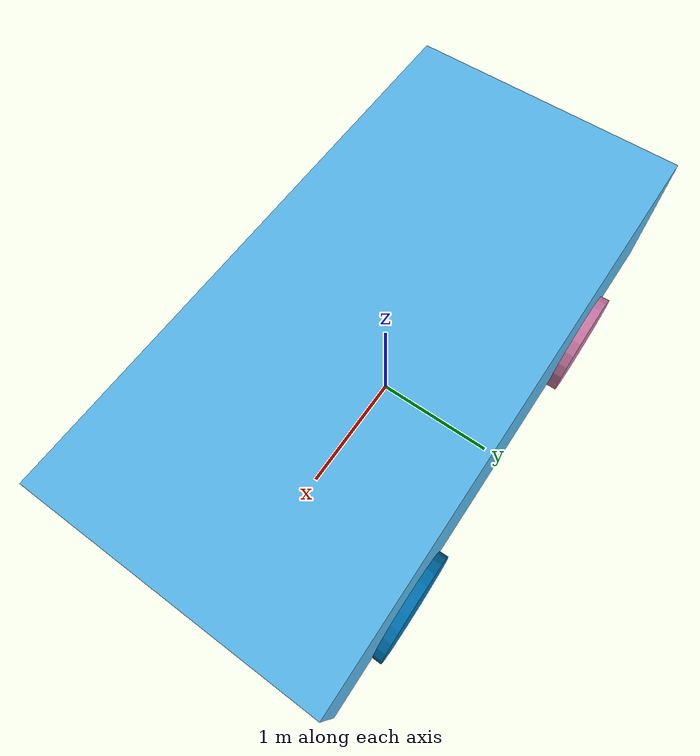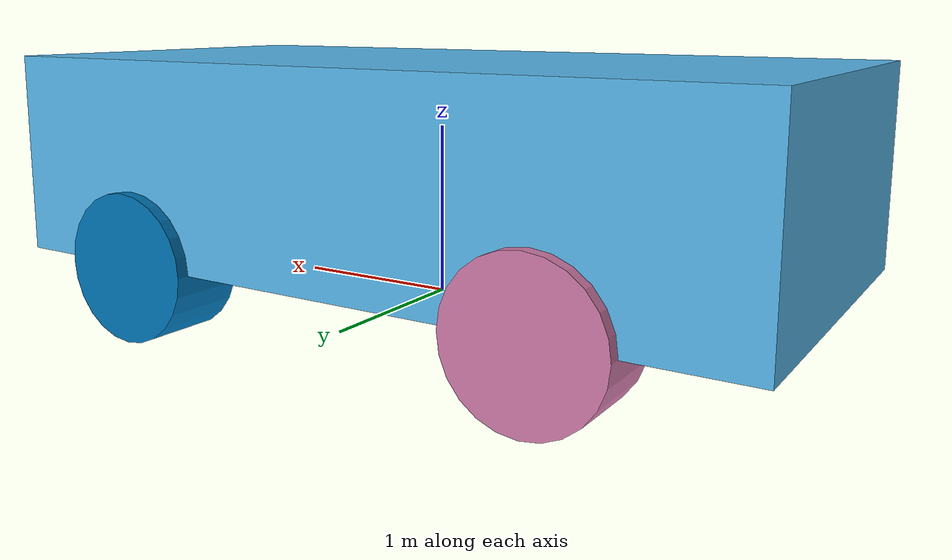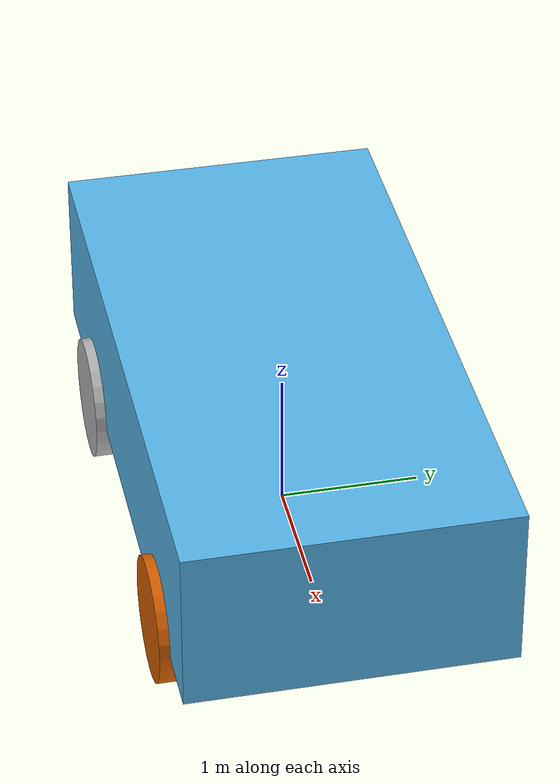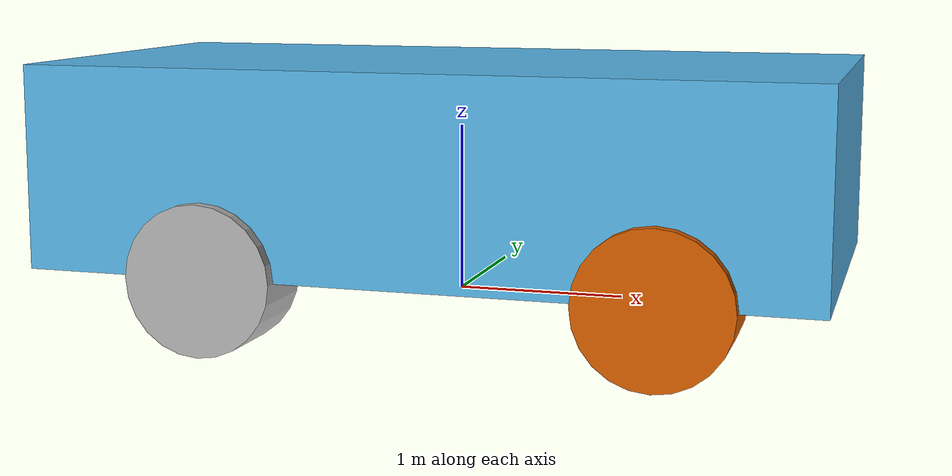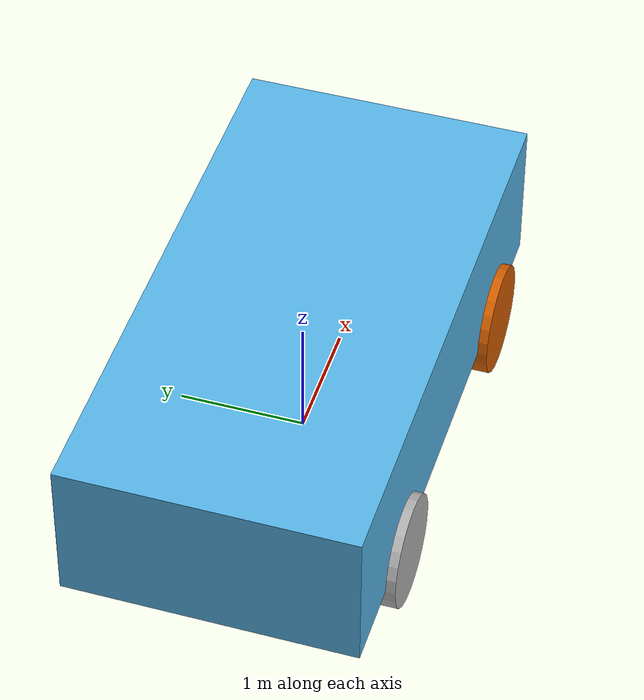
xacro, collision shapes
<?xml version="1.0"?>

<robot name="car"
  xmlns:xacro="http://www.ros.org/wiki/xacro">

  <!-- set up the gazebo plugin dedicated to help us use sensors-->
  <gazebo>
    <plugin filename="gz-sim-sensors-system" name = "gz::sim::systems::Sensors">
      <render_engine>ogre2</render_engine>
    </plugin>
  </gazebo>

  <!-- define xacro properties for the wheels -->
  <xacro:property name="wheel_radius" value = "0.442"/>
  <xacro:property name="wheel_length" value = "0.45"/>

  <!-- a macro to setup wheels and their joints -->
  <xacro:macro name = "wheel_link" params= "prefix forward right shift">
    <link name="${prefix}_wheel">
      <visual>
        <geometry>
          <mesh filename = "package://robot_desc/meshes/wheel.glb"/>
        </geometry>
      </visual>
      <collision>
        <origin rpy = "0 1.5707 0"/>
        <geometry>
          <cylinder length = "${wheel_length}" radius = "${wheel_radius}"/>
        </geometry>
      </collision>
      <inertial>
        <mass value = "30"/>
        <inertia ixx = "1.9715" iyy = "1.9715" izz = "2.9305" ixy = "0" ixz= "0" iyz = "0"/>
      </inertial>
    </link>
    <joint name="${prefix}_joint" type="continuous">
      <parent link="base_link"/>
      <child link="${prefix}_wheel"/>
      <origin rpy="0 0 ${1.5707*right}" xyz="${forward * 1.2 + shift} ${right * 1} 0.2"/>
      <axis xyz = "${1*right} 0 0"/>
    </joint>
  </xacro:macro>

  <!-- setup base footprint (i used it to solve a warning) -->
  <link name = "base_footprint" />

  <!-- base link of the car -->
  <link name="base_link">
    <visual>
      <geometry>
        <mesh filename = "package://robot_desc/meshes/car.glb"/>
      </geometry>
      <origin rpy = "1.5707 0 1.5707"/>
    </visual>
    <collision>
      <origin xyz = "0 0 0.8"/>
      <geometry>
        <box size = "4.6 2.3 1.2"/>
      </geometry>
    </collision>
    <inertial>
      <mass value = "1000"/>
      <inertia ixx = "560.8" iyy = "1883.3" izz = "2204" ixy = "0" ixz= "0" iyz = "0"/>
    </inertial>
  </link>

  <!-- the visual part of the camera -->
  <link name="camera_link">
    <visual>
      <geometry>
        <mesh filename = "package://robot_desc/meshes/camera.glb"/>
      </geometry>
      <origin rpy = "1.5707 0 1.5707"/>
    </visual>
    <collision>
      <geometry>
        <box size = "0.1 0.1 0.1"/>
      </geometry>
    </collision>
    <inertial>
      <mass value = "0.2"/>
      <inertia ixx = "0.0001" iyy = "0.0001" izz = "0.0001" ixy = "0" ixz= "0" iyz = "0"/>
    </inertial>
  </link>

  <!-- the optical part (where the camera really sees the environment)-->
  <link name = "camera_link_optical">
    <inertial>
      <mass value = "0.001"/>
      <inertia ixx = "0.0001" iyy = "0.0001" izz = "0.0001" ixy = "0" ixz= "0" iyz = "0"/>
    </inertial>
  </link>

  <!-- link the car base link to the dummy root footprint-->
  <joint name="base_footprint_joint" type="fixed">
    <parent link="base_footprint"/>
    <child link="base_link"/>
  </joint>

  <!-- link the camera to the car chasis-->
  <joint name="camera_joint" type="fixed">
    <parent link="base_link"/>
    <child link="camera_link"/>
    <origin xyz="1 0 1.2"/>
  </joint>

  <!-- link the optical part of the camera to the visual part -->
  <joint name="camera_optical_joint" type="fixed">
    <parent link="camera_link"/>
    <child link="camera_link_optical"/>
    <origin xyz="0.2 0 0" rpy = "0 0 0"/>
  </joint>

  <!-- define the four wheels -->
  <xacro:wheel_link prefix = "front_right" forward = "1" right = "1" shift = "0.2"/>
  <xacro:wheel_link prefix = "front_left" forward = "1" right = "-1" shift = "0.2"/>
  <xacro:wheel_link prefix = "back_right" forward = "-1" right = "1" shift = "0"/>
  <xacro:wheel_link prefix = "back_left" forward = "-1" right = "-1" shift = "0"/>

  <!-- setup the gazebo motion plugin -->
  <gazebo>
    <plugin name = "gz::sim::systems::DiffDrive" filename = 'gz-sim-diff-drive-system'>
      <left_joint>back_left_joint</left_joint>
      <right_joint>back_right_joint</right_joint>
      <left_joint>front_left_joint</left_joint>
      <right_joint>front_right_joint</right_joint>

      <wheel_separation>2</wheel_separation>
      <wheel_radius>${wheel_radius}</wheel_radius>

      <max_linear_acceleration>100.0</max_linear_acceleration>
      <max_angular_acceleration>1000.0</max_angular_acceleration>

      <topic>cmd_vel</topic>

      <frame_id>odom</frame_id>
      <child_frame_id>base_footprint</child_frame_id>
      <odom_topic>odom</odom_topic>
      <odom_publisher_frequency>30</odom_publisher_frequency>
      <tf_topic>tf</tf_topic>
    </plugin>
  </gazebo>

  <!-- setup  the camera sensor -->
  <gazebo reference = "camera_link_optical">
    <sensor name="camera" type="camera">
      <topic>camera/image</topic>
      <camera_info_topic>camera/camera_info</camera_info_topic>
      <gz_frame_id>camera_link_optical</gz_frame_id>
      <update_rate>30</update_rate>
      <always_on>true</always_on>
      <visualize>true</visualize>
      <camera>
        <horizontal_fov>1.3962634</horizontal_fov>
        <image>
          <width>1980</width>
          <height>1020</height>
          <format>R8G8B8</format>
        </image>
        <clip>
          <near>0.1</near>
          <far>50.0</far>
        </clip>
        <noise>
          <type>gaussian</type>
          <stddev>0.055</stddev>
        </noise>
      </camera>
    </sensor>
  </gazebo>

</robot>
